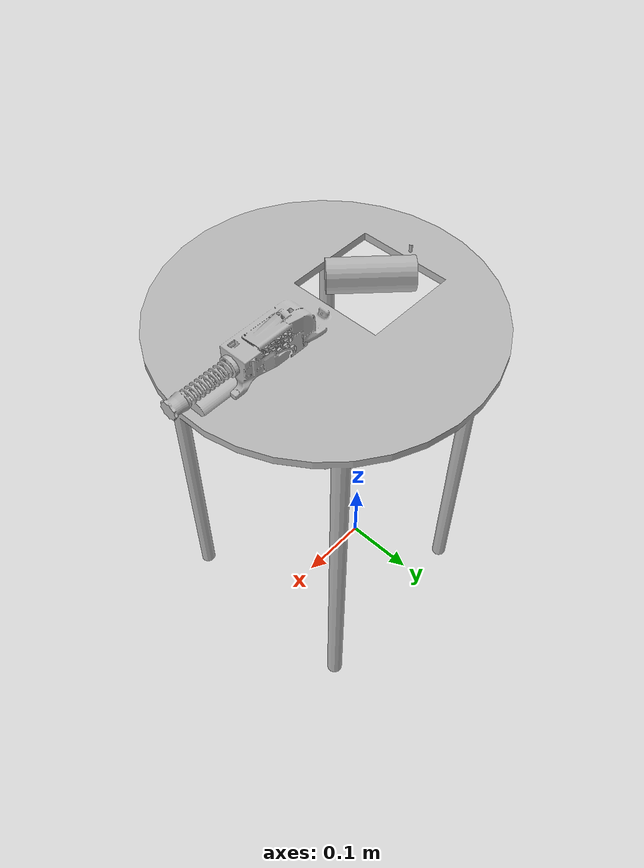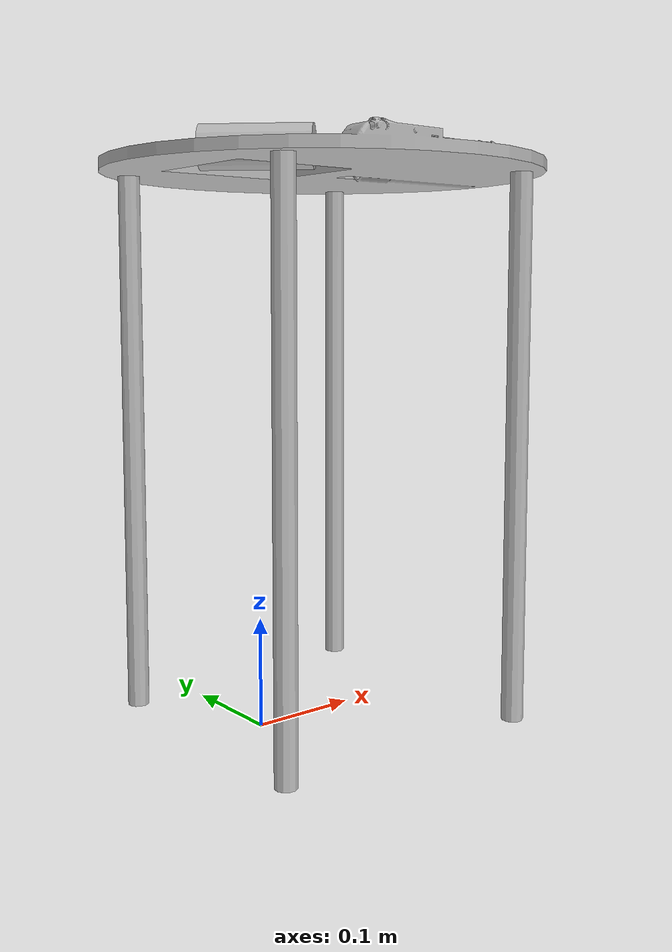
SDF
<sdf version="1.5">
    <model name="plate_with_muscle">
        <link name="plate">
            <pose>0 0 0 0 0 0</pose>
            <inertial>
                <pose>0 0 0 0 0 0</pose>
                <mass>100.0</mass>
                <inertia>
                    <ixx>10.0</ixx>
                    <ixy>0.0</ixy>
                    <ixz>0.0</ixz>
                    <iyy>10.0</iyy>
                    <iyz>0.0</iyz>
                    <izz>10.0</izz>
                </inertia>
            </inertial>
            <collision name="plate_collision">
                <pose>0 0 0 0 -0 0</pose>
                <geometry>
                    <mesh>
                        <scale>1 1 1</scale>
                        <uri>model://plate_with_muscle/meshes/collision/COL_plate.STL</uri>
                    </mesh>
                </geometry>
            </collision>
            <visual name="plate_visual">
                <pose>0 0 0 0 -0 0</pose>
                <geometry>
                    <mesh>
                        <scale>1 1 1</scale>
                        <uri>model://plate_with_muscle/meshes/visual/VIS_plate.STL</uri>
                    </mesh>
                </geometry>
            </visual>
        </link>

        <link name='cylinder'>
            <pose>0 0 0.52 1.5708 0 0.8</pose>
            <collision name='collision'>
                <geometry>
                    <cylinder>
                        <radius>0.02</radius>
                        <length>0.1</length>
                    </cylinder>
                </geometry>
            </collision>
            <visual name='visual'>
                <geometry>
                    <cylinder>
                        <radius>0.02</radius>
                        <length>0.1</length>
                    </cylinder>
                </geometry>
            </visual>
        </link>

        <joint name="joint" type="fixed">
            <child>cylinder</child>
            <parent>plate</parent>
        </joint>

        <plugin filename="libroboySim.so" name="roboySim">
            <myoMuscle name="motor0">
                <link name="plate">
                    <viaPoint type="FIXPOINT">0.072174 0.000030 0.512747</viaPoint>
                </link>
                <link name="cylinder">
                    <viaPoint type="CYLINDRICAL" state="0" revCounter="0" radius="0.02">0 0 0</viaPoint>
                </link>
                <link name="plate">
                    <viaPoint type="FIXPOINT">-0.068853 -0.000565 0.516309</viaPoint>
                </link>
            </myoMuscle>
        </plugin>
    </model>
</sdf>
